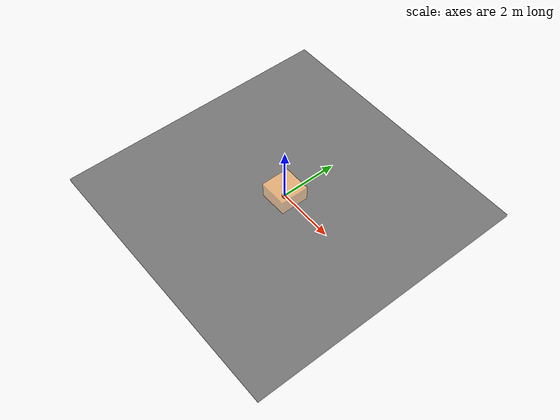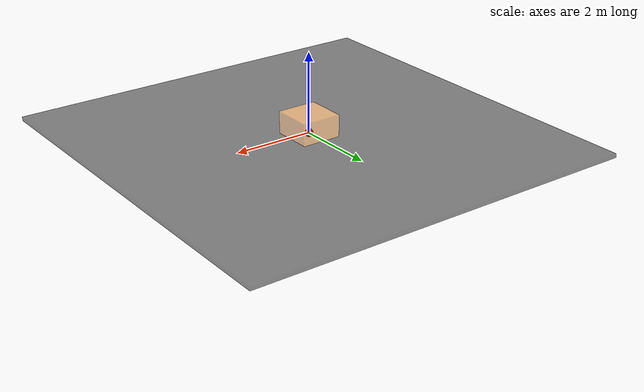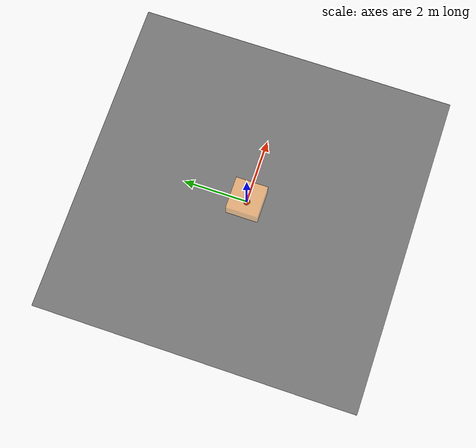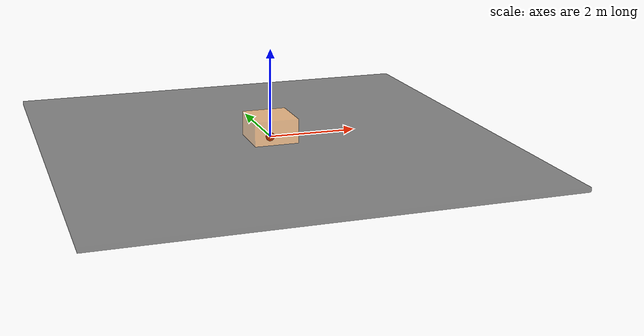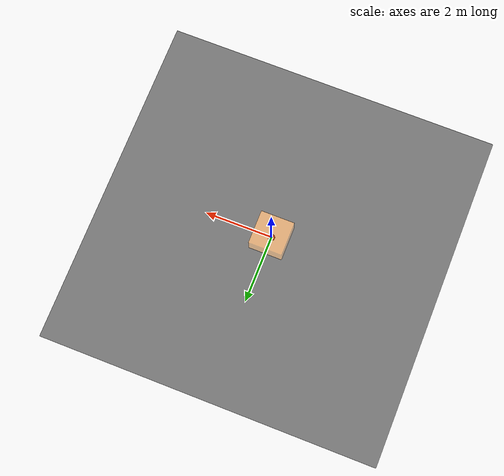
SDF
<?xml version="1.0"?>
<sdf version='1.7'>
  <world name="cube_pivoting_test_world">
    <model name="cube_pivoting">

      <link name='platform'>
        <pose> 0, 0, -0.1, 0, 0, 0</pose>
        <visual name="platform_visual">
          <pose>0 0 0 0 0 0</pose>
          <geometry>
            <box>
              <size>10 10 0.1</size>
            </box>
          </geometry>
          <material>
            <diffuse>0 0 0 0.5</diffuse>
          </material>
        </visual>
        <collision name="platform_collision">
          <pose>0 0 0 0 0 0</pose>
          <geometry>
            <box>
              <size>10 10 0.1</size>
            </box>
          </geometry>
          <drake:proximity_properties>
            <drake:mu_static>0.1</drake:mu_static>
            <drake:mu_dynamic>0.1</drake:mu_dynamic>
          </drake:proximity_properties>
        </collision>
      </link>

      <link name='cube'>
        <pose> 0, 0, 0, 0, 0, 0</pose>
        <inertial>
          <mass>1</mass>
        </inertial>
        <visual name="cube_visual">
          <pose>0 0 0 0 0 0</pose>
          <geometry>
            <box>
              <size>1 1 1</size>
            </box>
          </geometry>
          <material>
            <diffuse>0.8 0.4 0.0 0.5</diffuse>
          </material>
        </visual>
        <collision name="cube_collision">
          <pose>0 0 0 0 0 0</pose>
          <geometry>
            <box>
              <size>1 1 1</size>
            </box>
          </geometry>
          <drake:proximity_properties>
            <drake:mu_static>0.1</drake:mu_static>
            <drake:mu_dynamic>0.1</drake:mu_dynamic>
          </drake:proximity_properties>
        </collision>
      </link>

      <link name='left_finger'>
        <pose> 0, 0, 0, 1.57079632679, 0, 0</pose>
        <inertial>
          <mass>1</mass>
        </inertial>
        <visual name="left_finger_visual">
          <pose>0 0 0 0 0 0</pose>
          <geometry>
            <sphere>
              <radius>0.1</radius>
            </sphere>
          </geometry>
          <material>
            <diffuse>0.8 0 0.0 1</diffuse>
          </material>
        </visual>
        <collision name="left_finger_collision">
          <pose>0 0 0 0 0 0</pose>
          <geometry>
            <sphere>
              <radius>0.1</radius>
            </sphere>
          </geometry>
          <drake:proximity_properties>
            <drake:mu_static>0.1</drake:mu_static>
            <drake:mu_dynamic>0.1</drake:mu_dynamic>
          </drake:proximity_properties>
        </collision>
      </link>

      <link name='right_finger'>
        <inertial>
          <mass>1</mass>
        </inertial>
        <pose> 0, 0, 0, 1.57079632679, 0, 0</pose>
        <visual name="right_finger_visual">
          <pose>0 0 0 0 0 0</pose>
          <geometry>
            <sphere>
              <radius>0.1</radius>
            </sphere>
          </geometry>
          <material>
            <diffuse>0.8 0 0.0 1</diffuse>
          </material>
        </visual>
        <collision name="right_finger_collision">
          <pose>0 0 0 0 0 0</pose>
          <geometry>
            <sphere>
              <radius>0.1</radius>
            </sphere>
          </geometry>
          <drake:proximity_properties>
            <drake:mu_static>0.1</drake:mu_static>
            <drake:mu_dynamic>0.1</drake:mu_dynamic>
          </drake:proximity_properties>
        </collision>
      </link>

      <joint name='platform_fixed' type='fixed'>
        <parent>world</parent>
        <child>platform</child>
      </joint>

      <link name='world_frame' />

      <joint name='world_fixed' type='fixed'>
        <parent>world</parent>
        <child>world_frame</child>
      </joint>

      <frame name='cube_motion_frame' attached_to='world_fixed'>
        <pose>0 0 0 1.57079632679 0 0</pose>
      </frame>
      <frame name='cube_frame' attached_to='cube' />

      <drake:joint name="cube_joint" type="planar">
        <drake:parent>cube_motion_frame</drake:parent>
        <drake:child>cube_frame</drake:child>
        <drake:damping>0.0 0.0 0.0</drake:damping>
      </drake:joint>

      <link name='left_virtual_frame' />

      <joint name='left_finger_x' type='prismatic'>
        <parent>world</parent>
        <child>left_virtual_frame</child>
        <axis>
          <xyz>1.0 0.0 0.0</xyz>
          <limit>
            <effort>10.0</effort>
            <lower>-1</lower>
            <upper>0</upper>
          </limit>
        </axis>
      </joint>

      <joint name='left_finger_y' type='prismatic'>
        <parent>left_virtual_frame</parent>
        <child>left_finger</child>
        <axis>
          <xyz>0.0 1.0 0.0</xyz>
          <limit>
            <effort>10.0</effort>
            <lower>0</lower>
            <upper>1</upper>
          </limit>
        </axis>
      </joint>

      <link name='right_virtual_frame' />

      <joint name='right_finger_x' type='prismatic'>
        <parent>world</parent>
        <child>right_virtual_frame</child>
        <axis>
          <xyz>1.0 0.0 0.0</xyz>
          <limit>
            <effort>10.0</effort>
            <lower>0</lower>
            <upper>1</upper>
          </limit>
        </axis>
      </joint>

      <joint name='right_finger_y' type='prismatic'>
        <parent>right_virtual_frame</parent>
        <child>right_finger</child>
        <axis>
          <xyz>0.0 1.0 0.0</xyz>
          <limit>
            <effort>10.0</effort>
            <lower>0</lower>
            <upper>1</upper>
          </limit>
        </axis>
      </joint>

    </model>
  </world>

</sdf>
